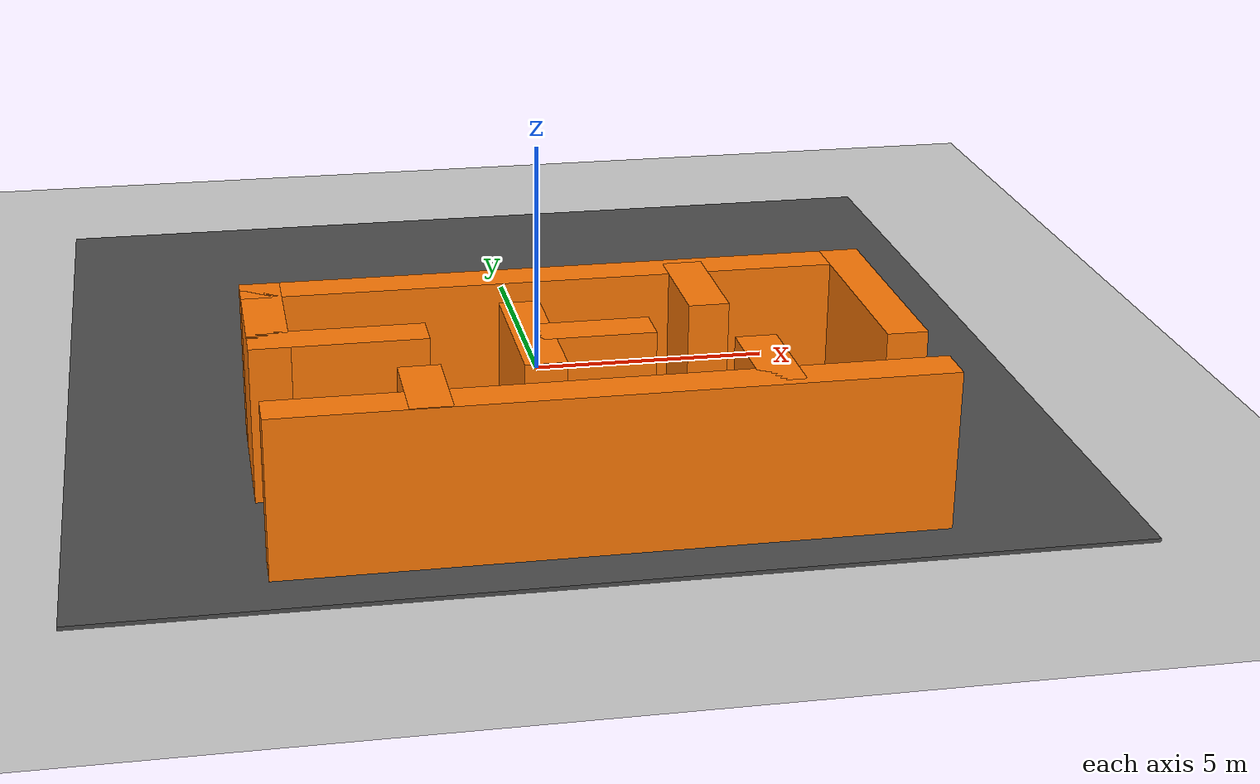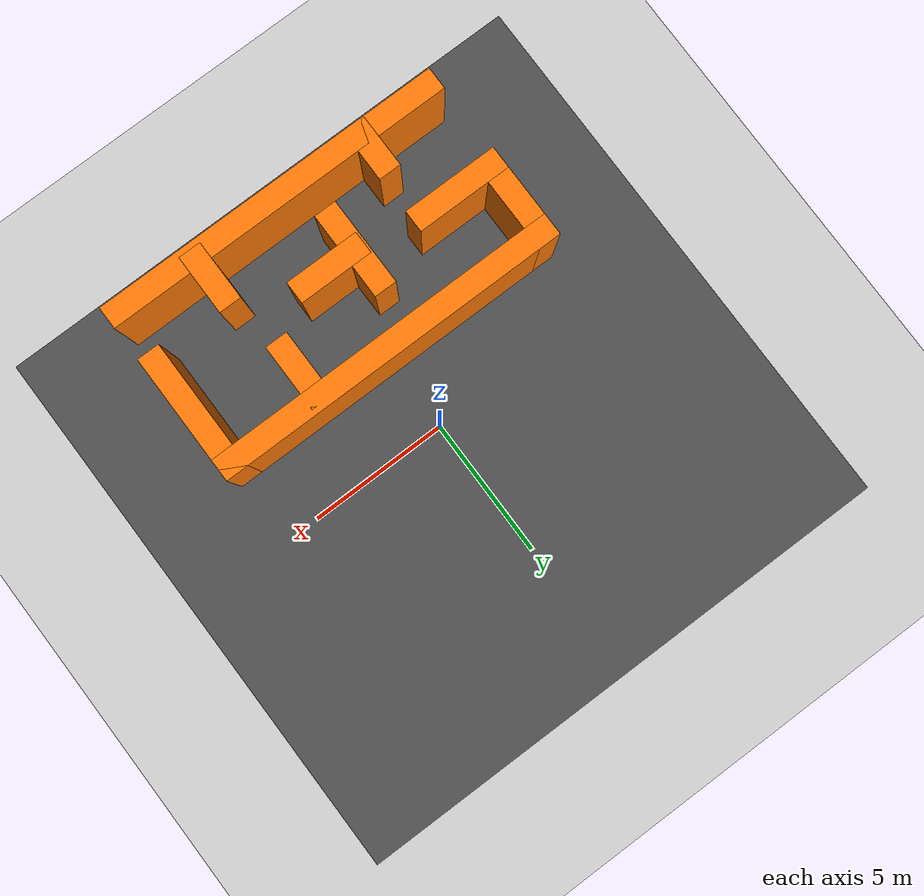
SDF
<sdf version="1.6">
 <world name="default">
  <model name="ground_plane">
   <static>1</static>
   <link name="link">
    <collision name="collision">
     <geometry><plane><normal>0 0 1</normal><size>150 150</size></plane></geometry>
     <surface><friction><ode><mu>100</mu><mu2>50</mu2></ode></friction></surface>
    </collision>
    <visual name="visual">
     <cast_shadows>0</cast_shadows>
     <geometry><plane><normal>0 0 1</normal><size>150 150</size></plane></geometry>
     <material>
      <script><uri>file://media/materials/scripts/gazebo.material</uri><name>Gazebo/Grey</name></script>
     </material>
    </visual>
   </link>
  </model>
  <model name="asphalt_plane">
   <static>1</static>
   <link name="link">
    <collision name="collision"><geometry><box><size>20 20 0.1</size></box></geometry></collision>
    <visual name="visual">
     <cast_shadows>0</cast_shadows>
     <geometry><box><size>20 20 0.1</size></box></geometry>
     <material>
      <script>
       <uri>model://asphalt_plane/materials/scripts</uri>
       <uri>model://asphalt_plane/materials/textures</uri>
       <name>vrc/asphalt</name>
      </script>
     </material>
    </visual>
   </link>
  </model>
  <model name="C_maze">
   <pose>-0.029968 -5.64407 0 0 -0 0</pose>
   <link name="Wall_0">
    <collision name="Wall_0_Collision">
     <geometry><box><size>12.65 0.8 3.2</size></box></geometry>
     <pose>0 0 1.6 0 -0 0</pose>
    </collision>
    <visual name="Wall_0_Visual">
     <pose>0 0 1.6 0 -0 0</pose>
     <geometry><box><size>12.65 0.8 3.2</size></box></geometry>
     <material>
      <script><uri>file://media/materials/scripts/gazebo.material</uri><name>Gazebo/Grey</name></script>
      <ambient>0.996078 0.47451 0.0196078 1</ambient>
     </material>
     <meta><layer>0</layer></meta>
    </visual>
    <pose>0.035 -2.92505 0 0 -0 0</pose>
   </link>
   <link name="Wall_11">
    <collision name="Wall_11_Collision">
     <geometry><box><size>1.90044 0.8 3.2</size></box></geometry>
     <pose>0 0 1.6 0 -0 0</pose>
    </collision>
    <visual name="Wall_11_Visual">
     <pose>0 0 1.6 0 -0 0</pose>
     <geometry><box><size>1.90044 0.8 3.2</size></box></geometry>
     <material>
      <script><uri>file://media/materials/scripts/gazebo.material</uri><name>Gazebo/Grey</name></script>
      <ambient>0.996078 0.47451 0.0196078 1</ambient>
     </material>
     <meta><layer>0</layer></meta>
    </visual>
    <pose>-3.325 -2.34205 0 0 -0 1.5708</pose>
   </link>
   <link name="Wall_13">
    <collision name="Wall_13_Collision">
     <geometry><box><size>3.15032 0.8 3.2</size></box></geometry>
     <pose>0 0 1.6 0 -0 0</pose>
    </collision>
    <visual name="Wall_13_Visual">
     <pose>0 0 1.6 0 -0 0</pose>
     <geometry><box><size>3.15032 0.8 3.2</size></box></geometry>
     <material>
      <script><uri>file://media/materials/scripts/gazebo.material</uri><name>Gazebo/Grey</name></script>
      <ambient>0.996078 0.47451 0.0196078 1</ambient>
     </material>
     <meta><layer>0</layer></meta>
    </visual>
    <pose>-1.017 -0.096053 0 0 -0 -1.5708</pose>
   </link>
   <link name="Wall_15">
    <collision name="Wall_15_Collision">
     <geometry><box><size>2.65022 0.8 3.2</size></box></geometry>
     <pose>0 0 1.6 0 -0 0</pose>
    </collision>
    <visual name="Wall_15_Visual">
     <pose>0 0 1.6 0 -0 0</pose>
     <geometry><box><size>2.65022 0.8 3.2</size></box></geometry>
     <material>
      <script><uri>file://media/materials/scripts/gazebo.material</uri><name>Gazebo/Grey</name></script>
      <ambient>0.996078 0.47451 0.0196078 1</ambient>
     </material>
     <meta><layer>0</layer></meta>
    </visual>
    <pose>-0.022 -0.111053 0 0 -0 0</pose>
   </link>
   <link name="Wall_17">
    <collision name="Wall_17_Collision">
     <geometry><box><size>2.40025 0.8 3.2</size></box></geometry>
     <pose>0 0 1.6 0 -0 0</pose>
    </collision>
    <visual name="Wall_17_Visual">
     <pose>0 0 1.6 0 -0 0</pose>
     <geometry><box><size>2.40025 0.8 3.2</size></box></geometry>
     <material>
      <script><uri>file://media/materials/scripts/gazebo.material</uri><name>Gazebo/Grey</name></script>
      <ambient>0.996078 0.47451 0.0196078 1</ambient>
     </material>
     <meta><layer>0</layer></meta>
    </visual>
    <pose>2.604 1.92295 0 0 -0 -1.5708</pose>
   </link>
   <link name="Wall_19">
    <collision name="Wall_19_Collision">
     <geometry><box><size>2.14985 0.8 3.2</size></box></geometry>
     <pose>0 0 1.6 0 -0 0</pose>
    </collision>
    <visual name="Wall_19_Visual">
     <pose>0 0 1.6 0 -0 0</pose>
     <geometry><box><size>2.14985 0.8 3.2</size></box></geometry>
     <material>
      <script><uri>file://media/materials/scripts/gazebo.material</uri><name>Gazebo/Grey</name></script>
      <ambient>0.996078 0.47451 0.0196078 1</ambient>
     </material>
     <meta><layer>0</layer></meta>
    </visual>
    <pose>3.093 -2.05905 0 0 -0 1.5708</pose>
   </link>
   <link name="Wall_2">
    <collision name="Wall_2_Collision">
     <geometry><box><size>12.7201 0.8 3.2</size></box></geometry>
     <pose>0 0 1.6 0 -0 0</pose>
    </collision>
    <visual name="Wall_2_Visual">
     <pose>0 0 1.6 0 -0 0</pose>
     <geometry><box><size>12.7201 0.8 3.2</size></box></geometry>
     <material>
      <script><uri>file://media/materials/scripts/gazebo.material</uri><name>Gazebo/Grey</name></script>
      <ambient>0.996078 0.47451 0.0196078 1</ambient>
     </material>
     <meta><layer>0</layer></meta>
    </visual>
    <pose>0 2.92495 0 0 -0 3.14159</pose>
   </link>
   <link name="Wall_22">
    <collision name="Wall_22_Collision">
     <geometry><box><size>4.65 0.8 3.2</size></box></geometry>
     <pose>0 0 1.6 0 -0 0</pose>
    </collision>
    <visual name="Wall_22_Visual">
     <pose>0 0 1.6 0 -0 0</pose>
     <geometry><box><size>4.65 0.8 3.2</size></box></geometry>
     <material>
      <script><uri>file://media/materials/scripts/gazebo.material</uri><name>Gazebo/Grey</name></script>
      <ambient>0.996078 0.47451 0.0196078 1</ambient>
     </material>
     <meta><layer>0</layer></meta>
    </visual>
    <pose>5.96 0.999947 0 0 -0 -1.5708</pose>
   </link>
   <link name="Wall_7">
    <collision name="Wall_7_Collision">
     <geometry><box><size>3.43521 0.8 3.2</size></box></geometry>
     <pose>0 0 1.6 0 -0 0</pose>
    </collision>
    <visual name="Wall_7_Visual">
     <pose>0 0 1.6 0 -0 0</pose>
     <geometry><box><size>3.43521 0.8 3.2</size></box></geometry>
     <material>
      <script><uri>file://media/materials/scripts/gazebo.material</uri><name>Gazebo/Grey</name></script>
      <ambient>0.996078 0.47451 0.0196078 1</ambient>
     </material>
     <meta><layer>0</layer></meta>
    </visual>
    <pose>-5.96 1.60745 0 0 -0 -1.5708</pose>
   </link>
   <link name="Wall_9">
    <collision name="Wall_9_Collision">
     <geometry><box><size>3.4 0.8 3.2</size></box></geometry>
     <pose>0 0 1.6 0 -0 0</pose>
    </collision>
    <visual name="Wall_9_Visual">
     <pose>0 0 1.6 0 -0 0</pose>
     <geometry><box><size>3.4 0.8 3.2</size></box></geometry>
     <material>
      <script><uri>file://media/materials/scripts/gazebo.material</uri><name>Gazebo/Grey</name></script>
      <ambient>0.996078 0.47451 0.0196078 1</ambient>
     </material>
     <meta><layer>0</layer></meta>
    </visual>
    <pose>-4.66 0.289947 0 0 -0 0</pose>
   </link>
   <static>1</static>
  </model>
 </world>
</sdf>
